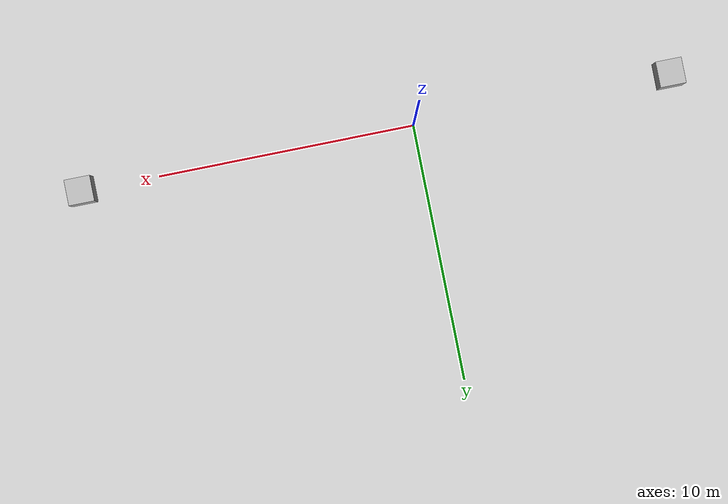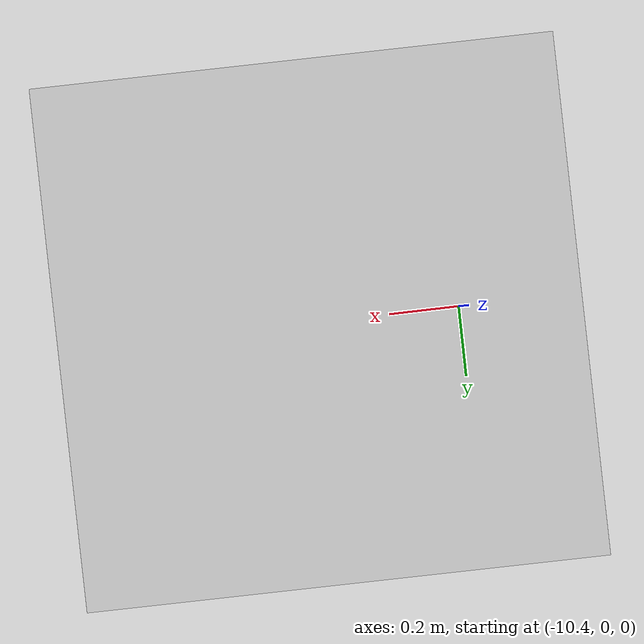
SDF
<?xml version="1.0" ?>
<sdf version="1.6">
  <world name="default">
    <include>
      <uri>model://ground_plane</uri>
    </include>
    <include>
      <uri>model://sun</uri>
    </include>

    <model name="tx_model">
      <static>true</static>
      <pose>-10.0 0.0 0.5 0 0 0</pose>
      <link name="link">
        <visual name="visual">
          <geometry>
            <box>
              <size>1 1 1</size>
            </box>
          </geometry>
        </visual>
        <sensor name="tx_sensor" type="wireless_transmitter">
          <transceiver>
            <essid>MyESSID</essid>
            <frequency>2442.0</frequency>
          </transceiver>
          <always_on>1</always_on>
          <!-- We choose a high fps on purpose. The goal is to check the effect
            of lockstep. -->
          <update_rate>500</update_rate>
          <visualize>true</visualize>
        </sensor>
      </link>
    </model>

    <model name="rx_model">
      <pose>13 0 0.5 0 0 0</pose>
      <link name="link">
        <visual name="visual">
          <geometry>
            <box>
              <size>1 1 1</size>
            </box>
          </geometry>
        </visual>
        <sensor name="rx_sensor" type="wireless_receiver">
          <transceiver>
            <gain>2.5</gain>
            <power>14.5</power>
          </transceiver>
          <always_on>1</always_on>
          <!-- We choose a high fps on purpose. The goal is to check the effect
            of lockstep. -->
          <update_rate>500</update_rate>
          <visualize>true</visualize>
        </sensor>
      </link>
    </model>

  </world>
</sdf>
